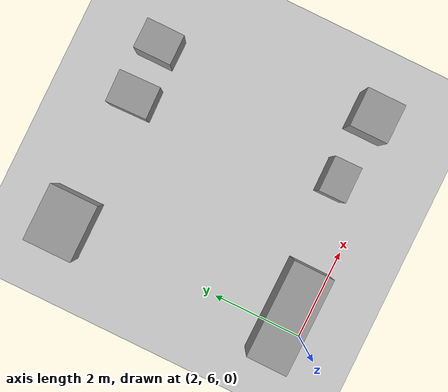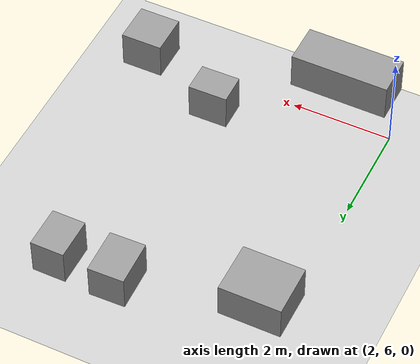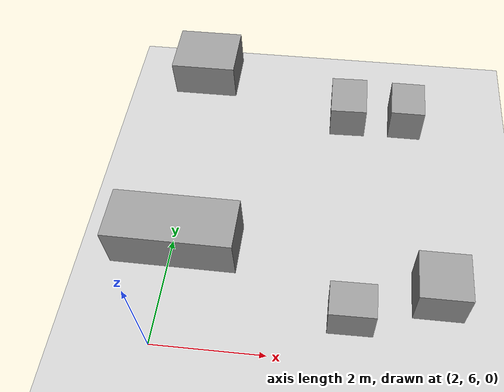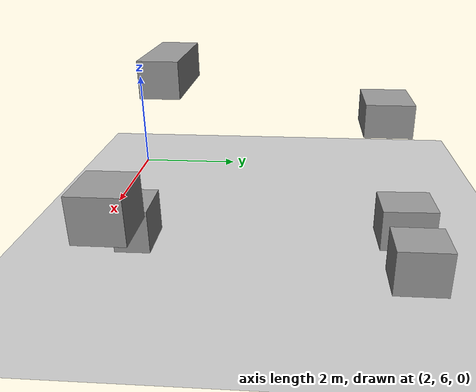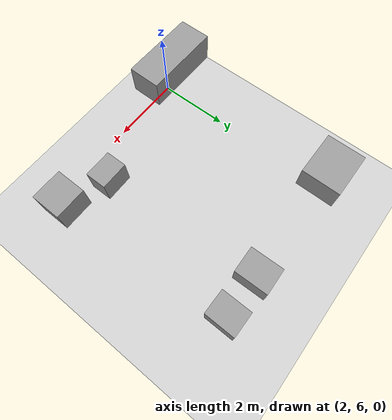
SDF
<sdf version="1.6">
 <world name="fei_lrs_world">
  <model name="ground_plane">
   <static>1</static>
   <link name="link">
    <collision name="collision">
     <geometry><plane><normal>0 0 1</normal><size>100 100</size></plane></geometry>
     <surface>
      <contact><collide_bitmask>65535</collide_bitmask></contact>
      <friction><ode><mu>100</mu><mu2>50</mu2></ode></friction>
     </surface>
    </collision>
    <visual name="visual">
     <cast_shadows>0</cast_shadows>
     <geometry><plane><normal>0 0 1</normal><size>100 100</size></plane></geometry>
     <material>
      <script><uri>file://media/materials/scripts/gazebo.material</uri><name>Gazebo/Grey</name></script>
     </material>
    </visual>
   </link>
  </model>
  <light name="sun" type="directional">
   <pose>0 0 10 0 -0 0</pose>
   <diffuse>0.8 0.8 0.8 1</diffuse>
   <specular>0.2 0.2 0.2 1</specular>
   <attenuation>
    <range>1000</range>
    <constant>0.9</constant>
    <linear>0.01</linear>
    <quadratic>0.001</quadratic>
   </attenuation>
   <direction>-0.5 0.1 -0.9</direction>
  </light>
  <gravity>0 0 -9.8</gravity>
  <magnetic_field>6e-06 2.3e-05 -4.2e-05</magnetic_field>
  <atmosphere type="adiabatic"/>
  <physics name="default_physics" default="0" type="ode">
   <max_step_size>0.001</max_step_size>
   <real_time_factor>1</real_time_factor>
   <real_time_update_rate>1000</real_time_update_rate>
  </physics>
  <scene><ambient>0.4 0.4 0.4 1</ambient><background>0.7 0.7 0.7 1</background><shadows>1</shadows></scene>
  <spherical_coordinates>
   <surface_model>EARTH_WGS84</surface_model>
   <latitude_deg>0</latitude_deg>
   <longitude_deg>0</longitude_deg>
   <elevation>0</elevation>
   <heading_deg>0</heading_deg>
  </spherical_coordinates>
  <model name="unit_box">
   <pose>5.05535 11.3603 0.36616 0 -0 0.027435</pose>
   <link name="link">
    <inertial>
     <mass>1</mass>
     <inertia>
      <ixx>0.166667</ixx>
      <ixy>0</ixy>
      <ixz>0</ixz>
      <iyy>0.166667</iyy>
      <iyz>0</iyz>
      <izz>0.166667</izz>
     </inertia>
    </inertial>
    <collision name="collision"><geometry><box><size>0.715135 0.91119 0.73232</size></box></geometry></collision>
    <visual name="visual">
     <geometry><box><size>0.715135 0.91119 0.73232</size></box></geometry>
     <material>
      <script><name>Gazebo/Grey</name><uri>file://media/materials/scripts/gazebo.material</uri></script>
     </material>
    </visual>
   </link>
  </model>
  <model name="unit_box_0">
   <pose>6.25263 11.3535 0.380421 0 -0 -0.001467</pose>
   <link name="link">
    <inertial>
     <mass>1</mass>
     <inertia>
      <ixx>0.166667</ixx>
      <ixy>0</ixy>
      <ixz>0</ixz>
      <iyy>0.166667</iyy>
      <iyz>0</iyz>
      <izz>0.166667</izz>
     </inertia>
    </inertial>
    <collision name="collision"><geometry><box><size>0.668404 0.83318 0.760841</size></box></geometry></collision>
    <visual name="visual">
     <geometry><box><size>0.668404 0.83318 0.760841</size></box></geometry>
     <material>
      <script><name>Gazebo/Grey</name><uri>file://media/materials/scripts/gazebo.material</uri></script>
     </material>
    </visual>
   </link>
  </model>
  <model name="unit_box_1">
   <pose>2.6318 6.86166 2.3444 -0 -0 -0.007587</pose>
   <link name="link">
    <inertial>
     <mass>1</mass>
     <inertia>
      <ixx>0.166667</ixx>
      <ixy>0</ixy>
      <ixz>0</ixz>
      <iyy>0.166667</iyy>
      <iyz>0</iyz>
      <izz>0.166667</izz>
     </inertia>
    </inertial>
    <collision name="collision"><geometry><box><size>1.86582 0.777893 0.728821</size></box></geometry></collision>
    <visual name="visual">
     <geometry><box><size>1.86582 0.777893 0.728821</size></box></geometry>
     <material>
      <script><name>Gazebo/Grey</name><uri>file://media/materials/scripts/gazebo.material</uri></script>
     </material>
    </visual>
   </link>
  </model>
  <model name="unit_box_2">
   <pose>6.65647 6.86743 1.36141 0 -0 0.000123</pose>
   <link name="link">
    <inertial>
     <mass>1</mass>
     <inertia>
      <ixx>0.166667</ixx>
      <ixy>0</ixy>
      <ixz>0</ixz>
      <iyy>0.166667</iyy>
      <iyz>0</iyz>
      <izz>0.166667</izz>
     </inertia>
    </inertial>
    <collision name="collision">
     <geometry><box><size>0.802462 0.788212 0.742819</size></box></geometry>
    </collision>
    <visual name="visual">
     <geometry><box><size>0.802462 0.788212 0.742819</size></box></geometry>
     <material>
      <script><name>Gazebo/Grey</name><uri>file://media/materials/scripts/gazebo.material</uri></script>
     </material>
    </visual>
   </link>
  </model>
  <model name="unit_box_3">
   <pose>5.35017 6.80542 0.384818 0 -0 0.010333</pose>
   <link name="link">
    <inertial>
     <mass>1</mass>
     <inertia>
      <ixx>0.166667</ixx>
      <ixy>0</ixy>
      <ixz>0</ixz>
      <iyy>0.166667</iyy>
      <iyz>0</iyz>
      <izz>0.166667</izz>
     </inertia>
    </inertial>
    <collision name="collision"><geometry><box><size>0.788302 0.60194 0.769635</size></box></geometry></collision>
    <visual name="visual">
     <geometry><box><size>0.788302 0.60194 0.769635</size></box></geometry>
     <material>
      <script><name>Gazebo/Grey</name><uri>file://media/materials/scripts/gazebo.material</uri></script>
     </material>
    </visual>
   </link>
  </model>
  <model name="unit_box_4">
   <pose>2.209 11.3608 1.34483 -0 -0 -0.000654</pose>
   <link name="link">
    <inertial>
     <mass>1</mass>
     <inertia>
      <ixx>0.166667</ixx>
      <ixy>0</ixy>
      <ixz>0</ixz>
      <iyy>0.166667</iyy>
      <iyz>0</iyz>
      <izz>0.166667</izz>
     </inertia>
    </inertial>
    <collision name="collision"><geometry><box><size>1.18832 1 0.709664</size></box></geometry></collision>
    <visual name="visual">
     <geometry><box><size>1.18832 1 0.709664</size></box></geometry>
     <material>
      <script><name>Gazebo/Grey</name><uri>file://media/materials/scripts/gazebo.material</uri></script>
     </material>
    </visual>
   </link>
  </model>
 </world>
</sdf>
